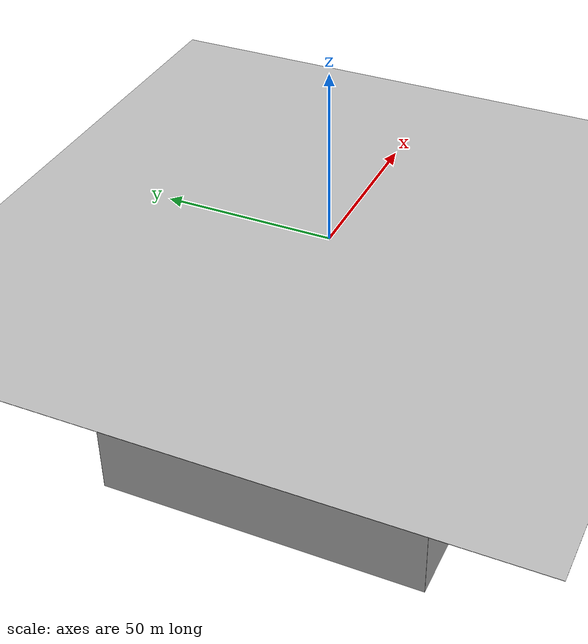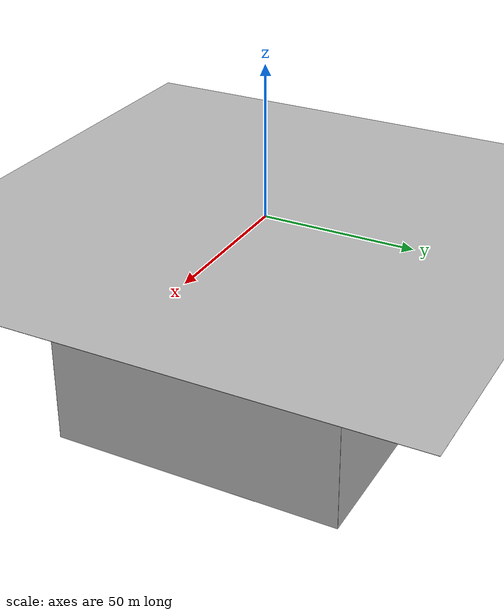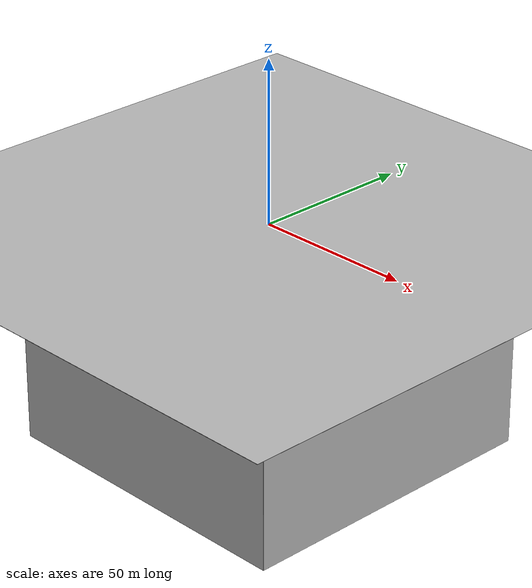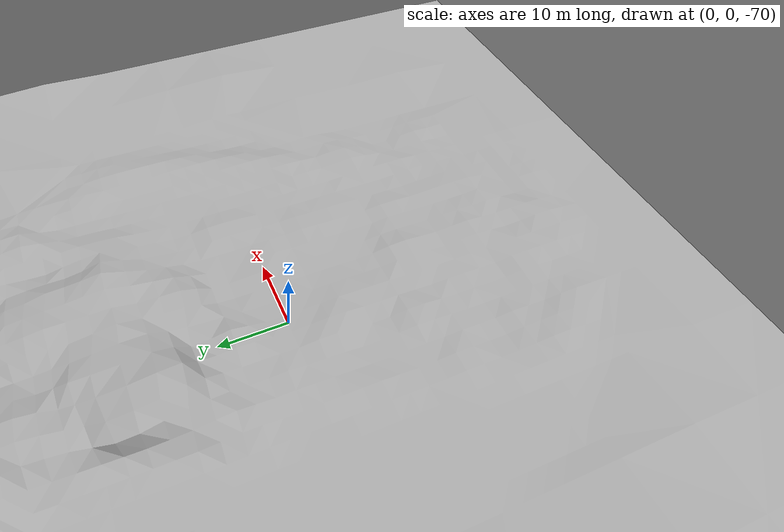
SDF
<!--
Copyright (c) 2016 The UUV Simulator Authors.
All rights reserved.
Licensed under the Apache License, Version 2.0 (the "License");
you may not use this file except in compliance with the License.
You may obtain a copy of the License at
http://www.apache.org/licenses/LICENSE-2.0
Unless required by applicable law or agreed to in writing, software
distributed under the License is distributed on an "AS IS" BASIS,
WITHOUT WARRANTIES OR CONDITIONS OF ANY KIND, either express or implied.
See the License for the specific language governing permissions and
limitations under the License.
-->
<?xml version="1.0" ?>
<sdf version="1.4">
  <world name="munkholmen">
    <physics name="default_physics" default="true" type="ode">
      <max_step_size>0.002</max_step_size>
      <real_time_factor>1</real_time_factor>
      <real_time_update_rate>500</real_time_update_rate>
    </physics>
    <scene>
      <ambient>0.7 0.7 0.7 1.0</ambient>
      <sky>
        <clouds>
          <speed>12</speed>
        </clouds>
      </sky>
      <shadows>0</shadows>
      <fog>
        <color>0.1 0.2 0.3 1.0</color>
        <type>linear</type>
        <density>0.0001</density>
        <start>10</start>
        <end>100</end>
      </fog>
    </scene>

    <!--
      Location of the M/S Herkules ship wreck on the Trondheim fjord, Norway
      Source: http://www.dykkepedia.com/wiki/Herkules
    -->
    <spherical_coordinates>
      <latitude_deg>63.4534333</latitude_deg>
      <longitude_deg>10.4055667</longitude_deg>
    </spherical_coordinates>

    <!-- Global light source -->
    <light type="directional" name="sun_diffuse_1">
      <pose>-200 -200 100 0 0 0</pose>
      <diffuse>0.6 0.6 0.6 1</diffuse>
      <specular>0 0 0 1</specular>
      <direction>-0.3 -0.3 -1</direction>
      <cast_shadows>true</cast_shadows>
    </light>

    <light type="directional" name="sun_diffuse_2">
      <pose>-100 50 200 0 0 0</pose>
      <diffuse>0.6 0.6 0.6 1</diffuse>
      <specular>0 0 0 1</specular>
      <direction>-0.3 -0.3 -1</direction>
      <cast_shadows>true</cast_shadows>
    </light>

    <light type="directional" name="sun_diffuse_3">
      <pose>-150 -130 50 0 0 0</pose>
      <diffuse>0.6 0.6 0.6 1</diffuse>
      <specular>0.2 0.2 0.2 1</specular>
      <direction>0.5 0.5 -1</direction>
      <cast_shadows>true</cast_shadows>
    </light>

    <!-- Seabed terrain around Munkholmen model -->
    <include>
      <uri>model://herkules_seabed</uri>
      <pose>0 0 0 0 0 0</pose>
    </include>

    <plugin name="underwater_current_plugin" filename="libuuv_underwater_current_ros_plugin.so">
      <namespace>hydrodynamics</namespace>
      <constant_current>
        <topic>current_velocity</topic>
        <velocity>
          <mean>0</mean>
          <min>0</min>
          <max>5</max>
          <mu>0.0</mu>
          <noiseAmp>0.0</noiseAmp>
        </velocity>

        <horizontal_angle>
          <mean>0</mean>
          <min>-3.141592653589793238</min>
          <max>3.141592653589793238</max>
          <mu>0.0</mu>
          <noiseAmp>0.0</noiseAmp>
        </horizontal_angle>

        <vertical_angle>
          <mean>0</mean>
          <min>-3.141592653589793238</min>
          <max>3.141592653589793238</max>
          <mu>0.0</mu>
          <noiseAmp>0.0</noiseAmp>
        </vertical_angle>
      </constant_current>
    </plugin>

    <plugin name="sc_interface" filename="libuuv_sc_ros_interface_plugin.so"/>

    <gui fullscreen='0'>
      <camera name='user_camera'>
        <pose frame=''>0 0 -57 0 0 3.141592</pose>
        <view_controller>orbit</view_controller>
        <projection_type>perspective</projection_type>
      </camera>
    </gui>
  </world>
</sdf>

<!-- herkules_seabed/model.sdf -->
<sdf version="1.5">
  <model name="herkules_seabed">
    <static>true</static>
    <link name="seabed">
      <collision name="seabed">
        <pose>0 0 -60 0 0 0</pose>
        <geometry>
          <mesh>
            <uri>model://herkules_seabed/meshes/herkules_seabed.dae</uri>
            <scale>1.0 1.0 1.0</scale>
          </mesh>
        </geometry>
      </collision>

      <visual name="seabed">
        <cast_shadows>true</cast_shadows>
        <pose>0 0 -60 0 0 0</pose>
        <geometry>
          <mesh>
            <uri>model://herkules_seabed/meshes/herkules_seabed.dae</uri>
            <scale>1.0 1.0 1.0</scale>
          </mesh>
        </geometry>
        <material>
          <script>
            <uri>file://Media/materials/scripts/sand.material</uri>
            <name>UUVSimulator/SandAndStones</name>
          </script>
        </material>
      </visual>
    </link>

    <link name="ocean_link">
      <visual name="surface">
        <pose>0 0 0 0 0 0</pose>
        <cast_shadows>false</cast_shadows>
        <geometry>
          <box>
            <size>400 400 0.1</size>
          </box>
        </geometry>
        <material>
          <script>
            <uri>file://Media/materials/scripts/water.material</uri>
            <name>UUVSimulator/StaticWater</name>
          </script>
        </material>
      </visual>

      <visual name="bottom">
        <pose>0 0 -70.0 0 0 0</pose>
        <geometry>
          <box>
            <size>100 100 0.1</size>
          </box>
        </geometry>
        <material>
          <script>
            <uri>file://Media/materials/scripts/water.material</uri>
            <name>UUVSimulator/SeaWall</name>
          </script>
        </material>
      </visual>

      <visual name="north_wall">
        <pose>0 50 -35.0 0 0 0</pose>
        <geometry>
          <box>
            <size>100 0.1 70</size>
          </box>
        </geometry>
        <material>
          <script>
            <uri>file://Media/materials/scripts/water.material</uri>
            <name>UUVSimulator/SeaWall</name>
          </script>
        </material>
      </visual>

      <visual name="south_wall">
        <pose>0 -50 -35.0 0 0 0</pose>
        <geometry>
          <box>
            <size>100 0.1 70</size>
          </box>
        </geometry>
        <material>
          <script>
            <uri>file://Media/materials/scripts/water.material</uri>
            <name>UUVSimulator/SeaWall</name>
          </script>
        </material>
      </visual>

      <visual name="east_wall">
        <pose>50 0 -35.0 0 0 0</pose>
        <geometry>
          <box>
            <size>0.1 100 70</size>
          </box>
        </geometry>
        <material>
          <script>
            <uri>file://Media/materials/scripts/water.material</uri>
            <name>UUVSimulator/SeaWall</name>
          </script>
        </material>
      </visual>

      <visual name="west_wall">
        <pose>-50 0 -35.0 0 0 0</pose>
        <geometry>
          <box>
            <size>0.1 100 70</size>
          </box>
        </geometry>
        <material>
          <script>
            <uri>file://Media/materials/scripts/water.material</uri>
            <name>UUVSimulator/SeaWall</name>
          </script>
        </material>
      </visual>
    </link>
  </model>
</sdf>
